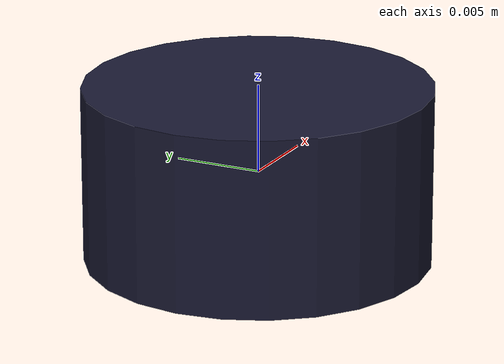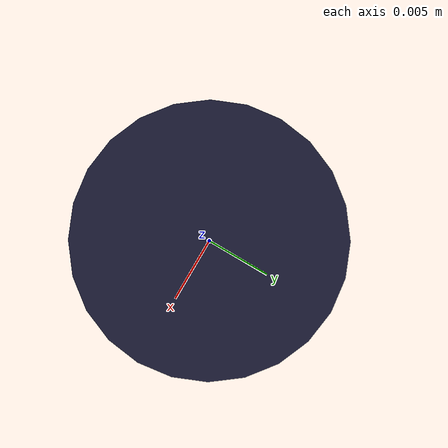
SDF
<?xml version='1.0'?>
<sdf version='1.6'>

  <model name='go_piece_black'>
    <link name='link'>
      <inertial>
        <pose frame=''>0 0 0.0 0 -0 0</pose>
        <mass>0.001</mass>
        <inertia>
          <ixx>1.0250308</ixx>
          <ixy>1.1</ixy>
          <ixz>1.1</ixz>
          <iyy>1.0250308</iyy>
          <iyz>1.1</iyz>
          <izz>1.04802</izz>
        </inertia>
      </inertial>
      <self_collide>0</self_collide>
      <enable_wind>0</enable_wind>
      <kinematic>0</kinematic>
      <pose frame=''>0 0 0 0 -0 0</pose>

      <visual name='visual'>
	<geometry>
	  <cylinder>
            <radius>0.0098</radius>
            <length>0.01</length>
	  </cylinder>
	</geometry>

	 <material> <!-- Wheel material -->
          <ambient>0.3 0.3 0.3 1.0</ambient>
          <diffuse>0.1 0.1 0.2 1</diffuse>
          <specular>1 1 1 1</specular>
          <emissive>0 0 0 1</emissive>
        </material> <!-- End wheel material -->

	</visual>

      <collision name='collision'>
        <laser_retro>0</laser_retro>
        <max_contacts>0.1</max_contacts>
        <pose frame=''>0 0 0.0 0 -0 0</pose>
        <geometry>
          <cylinder>
            <radius>0.0098</radius>
            <length>0.01</length>
	  </cylinder>

        </geometry>
        <surface>
          <friction>
            <ode>

	      <kp>1000000.0</kp>
  	      <kd>1.0</kd>
  	      <mu1>500</mu1>
  	      <mu2>500</mu2>
              <maxVel>0.0</maxVel>
  	      <minDepth>0.1</minDepth>

            </ode>
          </friction>
	</surface>
	  </collision>
  </link>

    <static>0</static>
    <allow_auto_disable>1</allow_auto_disable>
  </model>
</sdf>
